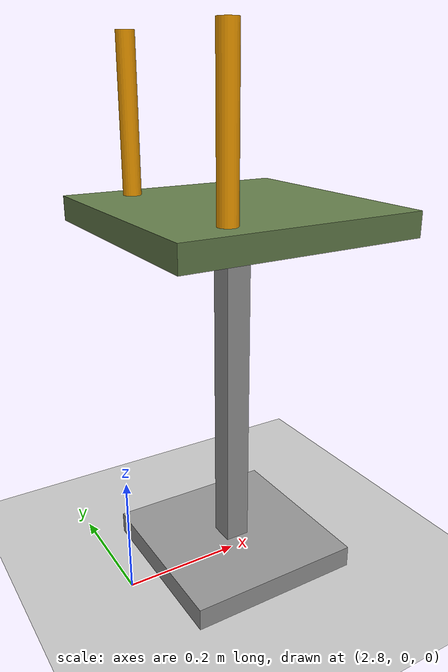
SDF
<sdf version="1.6">
 <world name="default">
  <light name="sun" type="directional">
   <pose>0 0 10 0 -0 0</pose>
   <diffuse>0.8 0.8 0.8 1</diffuse>
   <specular>0.1 0.1 0.1 1</specular>
   <attenuation>
    <range>1000</range>
    <constant>0.9</constant>
    <linear>0.01</linear>
    <quadratic>0.001</quadratic>
   </attenuation>
   <direction>-0.5 0.5 -1</direction>
  </light>
  <model name="ground_plane">
   <static>1</static>
   <link name="link">
    <collision name="collision">
     <geometry><plane><normal>0 0 1</normal><size>100 100</size></plane></geometry>
     <surface><friction><ode><mu>100</mu><mu2>50</mu2></ode></friction></surface>
    </collision>
    <visual name="visual">
     <cast_shadows>0</cast_shadows>
     <geometry><plane><normal>0 0 1</normal><size>100 100</size></plane></geometry>
     <material>
      <script><uri>file://media/materials/scripts/gazebo.material</uri><name>Gazebo/Grey</name></script>
     </material>
    </visual>
   </link>
  </model>
  <gravity>0 0 -9.8</gravity>
  <magnetic_field>6e-06 2.3e-05 -4.2e-05</magnetic_field>
  <atmosphere type="adiabatic"/>
  <physics name="default_physics" default="0" type="ode">
   <max_step_size>0.001</max_step_size>
   <real_time_factor>1</real_time_factor>
   <real_time_update_rate>1000</real_time_update_rate>
  </physics>
  <scene><ambient>0.4 0.4 0.4 1</ambient><background>0.7 0.7 0.7 1</background><shadows>1</shadows></scene>
  <spherical_coordinates>
   <surface_model>EARTH_WGS84</surface_model>
   <latitude_deg>0</latitude_deg>
   <longitude_deg>0</longitude_deg>
   <elevation>0</elevation>
   <heading_deg>0</heading_deg>
  </spherical_coordinates>
  <model name="table">
   <static>1</static>
   <link name="link_0">
    <pose>0 0 0.306667 0 -0 0</pose>
    <inertial>
     <mass>1</mass>
     <inertia>
      <ixx>0.166667</ixx>
      <ixy>0</ixy>
      <ixz>0</ixz>
      <iyy>0.166667</iyy>
      <iyz>0</iyz>
      <izz>0.166667</izz>
     </inertia>
    </inertial>
    <visual name="visual">
     <geometry><box><size>0.4 0.4 0.04</size></box></geometry>
     <material>
      <lighting>1</lighting>
      <script><uri>file://media/materials/scripts/gazebo.material</uri><name>Gazebo/Grey</name></script>
      <ambient>1 1 0.9 1</ambient>
      <diffuse>0.4 0.5 0.3 1</diffuse>
      <specular>0.01 0.01 0.01 1</specular>
      <emissive>0.02 0 0 1</emissive>
      <shader type="vertex"><normal_map>__default__</normal_map></shader>
     </material>
    </visual>
    <collision name="collision">
     <geometry><box><size>0.4 0.4 0.04</size></box></geometry>
     <surface>
      <friction>
       <ode><mu>1</mu><mu2>1</mu2><fdir1>0 0 0</fdir1><slip1>0</slip1><slip2>0</slip2></ode>
       <torsional>
        <coefficient>1</coefficient>
        <patch_radius>0</patch_radius>
        <surface_radius>0</surface_radius>
        <use_patch_radius>1</use_patch_radius>
        <ode><slip>0</slip></ode>
       </torsional>
      </friction>
      <bounce><restitution_coefficient>0</restitution_coefficient><threshold>1e+06</threshold></bounce>
      <contact>
       <collide_without_contact>0</collide_without_contact>
       <collide_without_contact_bitmask>1</collide_without_contact_bitmask>
       <collide_bitmask>1</collide_bitmask>
       <ode>
        <soft_cfm>0</soft_cfm>
        <soft_erp>0.2</soft_erp>
        <kp>1e+13</kp>
        <kd>1</kd>
        <max_vel>0.01</max_vel>
        <min_depth>0</min_depth>
       </ode>
       <bullet>
        <split_impulse>1</split_impulse>
        <split_impulse_penetration_threshold>-0.01</split_impulse_penetration_threshold>
        <soft_cfm>0</soft_cfm>
        <soft_erp>0.2</soft_erp>
        <kp>1e+13</kp>
        <kd>1</kd>
       </bullet>
      </contact>
     </surface>
    </collision>
   </link>
   <link name="link_1">
    <pose>0 0 -0.013333 0 -0 0</pose>
    <inertial>
     <mass>1</mass>
     <inertia>
      <ixx>0.166667</ixx>
      <ixy>0</ixy>
      <ixz>0</ixz>
      <iyy>0.166667</iyy>
      <iyz>0</iyz>
      <izz>0.166667</izz>
     </inertia>
    </inertial>
    <visual name="visual">
     <geometry><box><size>0.042 0.042 0.6</size></box></geometry>
     <material>
      <lighting>1</lighting>
      <script><uri>file://media/materials/scripts/gazebo.material</uri><name>Gazebo/Grey</name></script>
      <ambient>0.3 0.3 0.3 1</ambient>
      <diffuse>0.7 0.7 0.7 1</diffuse>
      <specular>0.01 0.01 0.01 1</specular>
      <emissive>0 0 0 1</emissive>
      <shader type="vertex"><normal_map>__default__</normal_map></shader>
     </material>
    </visual>
    <collision name="collision">
     <geometry><box><size>0.042 0.042 0.6</size></box></geometry>
     <surface>
      <friction>
       <ode><mu>1</mu><mu2>1</mu2><fdir1>0 0 0</fdir1><slip1>0</slip1><slip2>0</slip2></ode>
       <torsional>
        <coefficient>1</coefficient>
        <patch_radius>0</patch_radius>
        <surface_radius>0</surface_radius>
        <use_patch_radius>1</use_patch_radius>
        <ode><slip>0</slip></ode>
       </torsional>
      </friction>
      <bounce><restitution_coefficient>0</restitution_coefficient><threshold>1e+06</threshold></bounce>
      <contact>
       <collide_without_contact>0</collide_without_contact>
       <collide_without_contact_bitmask>1</collide_without_contact_bitmask>
       <collide_bitmask>1</collide_bitmask>
       <ode>
        <soft_cfm>0</soft_cfm>
        <soft_erp>0.2</soft_erp>
        <kp>1e+13</kp>
        <kd>1</kd>
        <max_vel>0.01</max_vel>
        <min_depth>0</min_depth>
       </ode>
       <bullet>
        <split_impulse>1</split_impulse>
        <split_impulse_penetration_threshold>-0.01</split_impulse_penetration_threshold>
        <soft_cfm>0</soft_cfm>
        <soft_erp>0.2</soft_erp>
        <kp>1e+13</kp>
        <kd>1</kd>
       </bullet>
      </contact>
     </surface>
    </collision>
   </link>
   <link name="link_2">
    <pose>0 0 -0.293333 0 -0 0</pose>
    <inertial>
     <mass>1</mass>
     <inertia>
      <ixx>0.166667</ixx>
      <ixy>0</ixy>
      <ixz>0</ixz>
      <iyy>0.166667</iyy>
      <iyz>0</iyz>
      <izz>0.166667</izz>
     </inertia>
    </inertial>
    <visual name="visual">
     <geometry><box><size>0.3 0.3 0.04</size></box></geometry>
     <material>
      <lighting>1</lighting>
      <script><uri>file://media/materials/scripts/gazebo.material</uri><name>Gazebo/Grey</name></script>
      <ambient>0.3 0.3 0.3 1</ambient>
      <diffuse>0.7 0.7 0.7 1</diffuse>
      <specular>0.01 0.01 0.01 1</specular>
      <emissive>0 0 0 1</emissive>
      <shader type="vertex"><normal_map>__default__</normal_map></shader>
     </material>
    </visual>
    <collision name="collision">
     <geometry><box><size>0.3 0.3 0.04</size></box></geometry>
     <surface>
      <friction>
       <ode><mu>1</mu><mu2>1</mu2><fdir1>0 0 0</fdir1><slip1>0</slip1><slip2>0</slip2></ode>
       <torsional>
        <coefficient>1</coefficient>
        <patch_radius>0</patch_radius>
        <surface_radius>0</surface_radius>
        <use_patch_radius>1</use_patch_radius>
        <ode><slip>0</slip></ode>
       </torsional>
      </friction>
      <bounce><restitution_coefficient>0</restitution_coefficient><threshold>1e+06</threshold></bounce>
      <contact>
       <collide_without_contact>0</collide_without_contact>
       <collide_without_contact_bitmask>1</collide_without_contact_bitmask>
       <collide_bitmask>1</collide_bitmask>
       <ode>
        <soft_cfm>0</soft_cfm>
        <soft_erp>0.2</soft_erp>
        <kp>1e+13</kp>
        <kd>1</kd>
        <max_vel>0.01</max_vel>
        <min_depth>0</min_depth>
       </ode>
       <bullet>
        <split_impulse>1</split_impulse>
        <split_impulse_penetration_threshold>-0.01</split_impulse_penetration_threshold>
        <soft_cfm>0</soft_cfm>
        <soft_erp>0.2</soft_erp>
        <kp>1e+13</kp>
        <kd>1</kd>
       </bullet>
      </contact>
     </surface>
    </collision>
   </link>
   <joint name="link_1_JOINT_1" type="fixed">
    <parent>link_1</parent>
    <child>link_0</child>
    <physics>
     <ode><limit><cfm>0</cfm><erp>0.2</erp></limit><suspension><cfm>0</cfm><erp>0.2</erp></suspension></ode>
    </physics>
   </joint>
   <joint name="link_2_JOINT_0" type="fixed">
    <parent>link_2</parent>
    <child>link_1</child>
    <physics>
     <ode><limit><cfm>0</cfm><erp>0.2</erp></limit><suspension><cfm>0</cfm><erp>0.2</erp></suspension></ode>
    </physics>
   </joint>
   <pose>3 0 0.31 0 -0 0</pose>
  </model>
  <model name="cylinder_pick_2">
   <link name="link">
    <inertial>
     <mass>1</mass>
     <inertia><ixx>0.145833</ixx><ixy>0</ixy><ixz>0</ixz><iyy>0.145833</iyy><iyz>0</iyz><izz>0.125</izz></inertia>
    </inertial>
    <visual name="visual">
     <geometry><cylinder><radius>0.015</radius><length>0.25</length></cylinder></geometry>
     <material>
      <script><name>Gazebo/Grey</name><uri>file://media/materials/scripts/gazebo.material</uri></script>
      <ambient>1 0.647 0 1</ambient>
      <diffuse>1 0.647 0 1</diffuse>
      <specular>0.01 0.01 0.01 1</specular>
      <emissive>0 0 0 1</emissive>
      <shader type="vertex"><normal_map>__default__</normal_map></shader>
     </material>
    </visual>
    <collision name="collision">
     <geometry><cylinder><radius>0.015</radius><length>0.25</length></cylinder></geometry>
     <surface>
      <friction>
       <ode><mu>1</mu><mu2>1</mu2><fdir1>0 0 0</fdir1><slip1>0</slip1><slip2>0</slip2></ode>
       <torsional>
        <coefficient>1</coefficient>
        <patch_radius>0</patch_radius>
        <surface_radius>0</surface_radius>
        <use_patch_radius>1</use_patch_radius>
        <ode><slip>0</slip></ode>
       </torsional>
      </friction>
      <bounce><restitution_coefficient>0</restitution_coefficient><threshold>1e+06</threshold></bounce>
      <contact>
       <collide_without_contact>0</collide_without_contact>
       <collide_without_contact_bitmask>1</collide_without_contact_bitmask>
       <collide_bitmask>1</collide_bitmask>
       <ode>
        <soft_cfm>0</soft_cfm>
        <soft_erp>0.2</soft_erp>
        <kp>1e+13</kp>
        <kd>1</kd>
        <max_vel>0.01</max_vel>
        <min_depth>0</min_depth>
       </ode>
       <bullet>
        <split_impulse>1</split_impulse>
        <split_impulse_penetration_threshold>-0.01</split_impulse_penetration_threshold>
        <soft_cfm>0</soft_cfm>
        <soft_erp>0.2</soft_erp>
        <kp>1e+13</kp>
        <kd>1</kd>
       </bullet>
      </contact>
     </surface>
    </collision>
   </link>
   <static>0</static>
   <pose>2.9 -0.15 0.76 0 -0 0</pose>
  </model>
  <model name="cylinder_pick_3">
   <link name="link">
    <inertial>
     <mass>1</mass>
     <inertia><ixx>0.145833</ixx><ixy>0</ixy><ixz>0</ixz><iyy>0.145833</iyy><iyz>0</iyz><izz>0.125</izz></inertia>
    </inertial>
    <visual name="visual">
     <geometry><cylinder><radius>0.015</radius><length>0.25</length></cylinder></geometry>
     <material>
      <script><name>Gazebo/Grey</name><uri>file://media/materials/scripts/gazebo.material</uri></script>
      <ambient>1 0.647 0 1</ambient>
      <diffuse>1 0.647 0 1</diffuse>
      <specular>0.01 0.01 0.01 1</specular>
      <emissive>0 0 0 1</emissive>
      <shader type="vertex"><normal_map>__default__</normal_map></shader>
     </material>
    </visual>
    <collision name="collision">
     <geometry><cylinder><radius>0.015</radius><length>0.25</length></cylinder></geometry>
     <surface>
      <friction>
       <ode><mu>1</mu><mu2>1</mu2><fdir1>0 0 0</fdir1><slip1>0</slip1><slip2>0</slip2></ode>
       <torsional>
        <coefficient>1</coefficient>
        <patch_radius>0</patch_radius>
        <surface_radius>0</surface_radius>
        <use_patch_radius>1</use_patch_radius>
        <ode><slip>0</slip></ode>
       </torsional>
      </friction>
      <bounce><restitution_coefficient>0</restitution_coefficient><threshold>1e+06</threshold></bounce>
      <contact>
       <collide_without_contact>0</collide_without_contact>
       <collide_without_contact_bitmask>1</collide_without_contact_bitmask>
       <collide_bitmask>1</collide_bitmask>
       <ode>
        <soft_cfm>0</soft_cfm>
        <soft_erp>0.2</soft_erp>
        <kp>1e+13</kp>
        <kd>1</kd>
        <max_vel>0.01</max_vel>
        <min_depth>0</min_depth>
       </ode>
       <bullet>
        <split_impulse>1</split_impulse>
        <split_impulse_penetration_threshold>-0.01</split_impulse_penetration_threshold>
        <soft_cfm>0</soft_cfm>
        <soft_erp>0.2</soft_erp>
        <kp>1e+13</kp>
        <kd>1</kd>
       </bullet>
      </contact>
     </surface>
    </collision>
   </link>
   <static>0</static>
   <pose>2.9 0.15 0.76 0 -0 0</pose>
  </model>
 </world>
</sdf>
